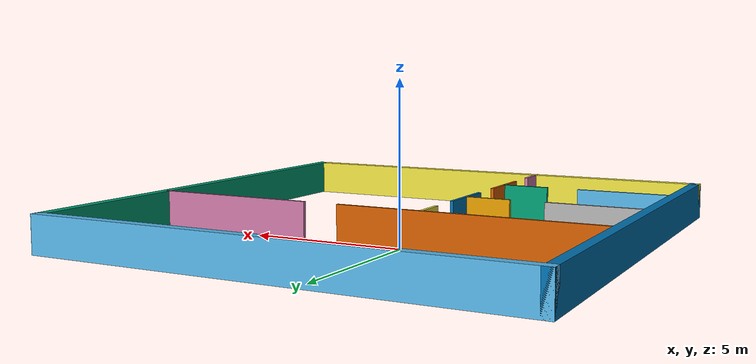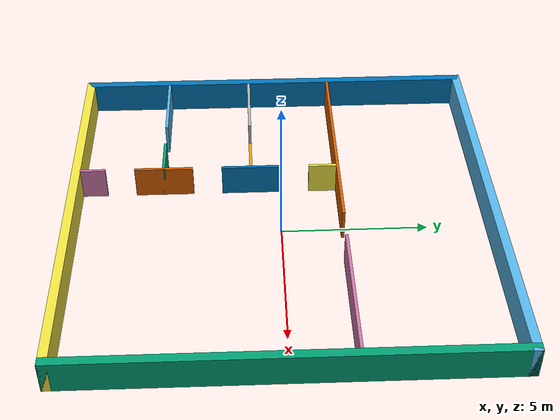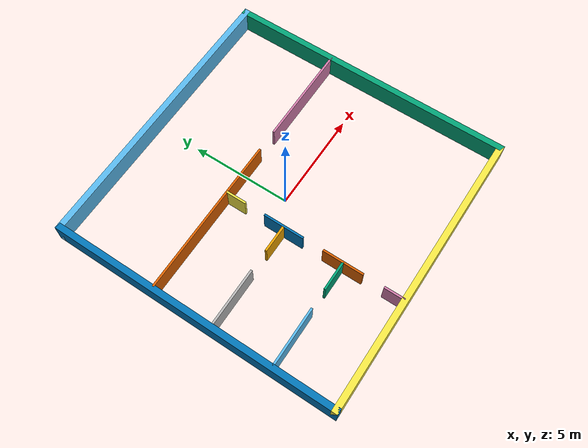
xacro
<?xml version="1.0"?>

<robot name="walls">
  <!-- import all gazebo-customization elements -->
  <xacro:include filename="$(find gazebo_worlds)/common/worlds/world.gazebo" />

	<!-- dummy_link -->
	<link name="dummy_link">
		<inertial>
			<origin xyz="0 0 0" />
			<mass value="5.0" />
			<inertia ixx="0.0" ixy="0.0" ixz="0.0" iyy="0.0" iyz="0.0" izz="0.0" />
		</inertial>
		<visual>
			<origin xyz="0 0 0" />
			<geometry>
				<box size="0.00 0.00 0.00" />
			</geometry>
		</visual>
		<collision>
			<origin xyz="0 0 0" />
			<geometry>
				<box size="0.00 0.00 0.00" />
			</geometry>
		</collision>
	</link>

<!-- walls -->

	<!-- north_wall -->
	<link name="north_wall">
		<inertial>
			<origin xyz="0 0 0" />
			<mass value="5.0" />
			<inertia ixx="0.0" ixy="0.0" ixz="0.0" iyy="0.0" iyz="0.0" izz="0.0" />
		</inertial>
		<visual>
			<origin xyz="0 0 0" />
			<geometry>
				<box size="14.3 0.3 1.1" />
			</geometry>
		</visual>
		<collision>
			<origin xyz="0 0 0" />
			<geometry>
				<box size="14.32 0.32 1.120" />
			</geometry>
		</collision>
	</link>

	<joint name="joint_north_wall" type="fixed">
		<origin xyz="0 7 1" rpy="0 0 0" />
		<parent link="dummy_link" />
		<child link="north_wall" />
	</joint>

	<!-- east_wall -->
	<link name="east_wall">
		<inertial>
			<origin xyz="0 0 0" />
			<mass value="5.0" />
			<inertia ixx="0.0" ixy="0.0" ixz="0.0" iyy="0.0" iyz="0.0" izz="0.0" />
		</inertial>
		<visual>
			<origin xyz="0 0 0" />
			<geometry>
				<box size="0.3 14.3 1.1" />
			</geometry>
		</visual>
		<collision>
			<origin xyz="0 0 0" />
			<geometry>
				<box size="0.32 14.32 1.120" />
			</geometry>
		</collision>
	</link>

	<joint name="joint_east_wall" type="fixed">
		<origin xyz="7 0 1" rpy="0 0 0" />
		<parent link="dummy_link" />
		<child link="east_wall" />
	</joint>

	<!-- south_wall -->
	<link name="south_wall">
		<inertial>
			<origin xyz="0 0 0" />
			<mass value="5.0" />
			<inertia ixx="0.0" ixy="0.0" ixz="0.0" iyy="0.0" iyz="0.0" izz="0.0" />
		</inertial>
		<visual>
			<origin xyz="0 0 0" />
			<geometry>
				<box size="14.3 0.3 1.1" />
			</geometry>
		</visual>
		<collision>
			<origin xyz="0 0 0" />
			<geometry>
				<box size="14.32 0.32 1.120" />
			</geometry>
		</collision>
	</link>

	<joint name="joint_south_wall" type="fixed">
		<origin xyz="0 -7 1" rpy="0 0 0" />
		<parent link="dummy_link" />
		<child link="south_wall" />
	</joint>

	<!-- west_wall -->
	<link name="west_wall">
		<inertial>
			<origin xyz="0 0 0" />
			<mass value="5.0" />
			<inertia ixx="0.0" ixy="0.0" ixz="0.0" iyy="0.0" iyz="0.0" izz="0.0" />
		</inertial>
		<visual>
			<origin xyz="0 0 0" />
			<geometry>
				<box size="0.3 14.3 1.1" />
			</geometry>
		</visual>
		<collision>
			<origin xyz="0 0 0" />
			<geometry>
				<box size="0.32 14.32 1.12" />
			</geometry>
		</collision>
	</link>

	<joint name="joint_west_wall" type="fixed">
		<origin xyz="-7 0 1" rpy="0 0 0" />
		<parent link="dummy_link" />
		<child link="west_wall" />
	</joint>

        <!-- center_wall_one -->
	<link name="center_wall_one">
		<inertial>
			<origin xyz="0 0 0" />
			<mass value="5.0" />
			<inertia ixx="0.0" ixy="0.0" ixz="0.0" iyy="0.0" iyz="0.0" izz="0.0" />
		</inertial>
		<visual>
			<origin xyz="0 0 0" />
			<geometry>
				<box size="7.85 0.1 1.1" />
			</geometry>
		</visual>
		<collision>
			<origin xyz="0 0 0" />
			<geometry>
				<box size="7.85 0.1 1.1" />
			</geometry>
		</collision>
	</link>

	<joint name="joint_center_wall_one" type="fixed">
		<origin xyz="-3 2 1" rpy="0 0 0" />
		<parent link="dummy_link" />
		<child link="center_wall_one" />
	</joint>

        <!-- center_wall_two -->
	<link name="center_wall_two">
		<inertial>
			<origin xyz="0 0 0" />
			<mass value="5.0" />
			<inertia ixx="0.0" ixy="0.0" ixz="0.0" iyy="0.0" iyz="0.0" izz="0.0" />
		</inertial>
		<visual>
			<origin xyz="0 0 0" />
			<geometry>
				<box size="5 0.1 1.1" />
			</geometry>
		</visual>
		<collision>
			<origin xyz="0 0 0" />
			<geometry>
				<box size="5.0 0.1 1.1" />
			</geometry>
		</collision>
	</link>

	<joint name="joint_center_wall_two" type="fixed">
		<origin xyz="4.5 2 1" rpy="0 0 0" />
		<parent link="dummy_link" />
		<child link="center_wall_two" />
	</joint>

        <!-- center_wall_three -->
	<link name="center_wall_three">
		<inertial>
			<origin xyz="0 0 0" />
			<mass value="5.0" />
			<inertia ixx="0.0" ixy="0.0" ixz="0.0" iyy="0.0" iyz="0.0" izz="0.0" />
		</inertial>
		<visual>
			<origin xyz="0 0 0" />
			<geometry>
				<box size="2.85 0.1 1.1" />
			</geometry>
		</visual>
		<collision>
			<origin xyz="0 0 0" />
			<geometry>
				<box size="2.85 0.1 1.1" />
			</geometry>
		</collision>
	</link>

	<joint name="joint_center_wall_three" type="fixed">
		<origin xyz="-5.5 -1 1" rpy="0 0 0" />
		<parent link="dummy_link" />
		<child link="center_wall_three" />
	</joint>

        <!-- center_wall_four -->
	<link name="center_wall_four">
		<inertial>
			<origin xyz="0 0 0" />
			<mass value="5.0" />
			<inertia ixx="0.0" ixy="0.0" ixz="0.0" iyy="0.0" iyz="0.0" izz="0.0" />
		</inertial>
		<visual>
			<origin xyz="0 0 0" />
			<geometry>
				<box size="1.35 0.1 1.1" />
			</geometry>
		</visual>
		<collision>
			<origin xyz="0 0 0" />
			<geometry>
				<box size="1.35 0.1 1.1" />
			</geometry>
		</collision>
	</link>

	<joint name="joint_center_wall_four" type="fixed">
		<origin xyz="-2.35 -1 1" rpy="0 0 0" />
		<parent link="dummy_link" />
		<child link="center_wall_four" />
	</joint>

        <!-- center_wall_five -->
	<link name="center_wall_five">
		<inertial>
			<origin xyz="0 0 0" />
			<mass value="5.0" />
			<inertia ixx="0.0" ixy="0.0" ixz="0.0" iyy="0.0" iyz="0.0" izz="0.0" />
		</inertial>
		<visual>
			<origin xyz="0 0 0" />
			<geometry>
				<box size="2.85 0.1 1.1" />
			</geometry>
		</visual>
		<collision>
			<origin xyz="0 0 0" />
			<geometry>
				<box size="2.85 0.1 1.1" />
			</geometry>
		</collision>
	</link>

	<joint name="joint_center_wall_five" type="fixed">
		<origin xyz="-5.5 -4 1" rpy="0 0 0" />
		<parent link="dummy_link" />
		<child link="center_wall_five" />
	</joint>

        <!-- center_wall_six -->
	<link name="center_wall_six">
		<inertial>
			<origin xyz="0 0 0" />
			<mass value="5.0" />
			<inertia ixx="0.0" ixy="0.0" ixz="0.0" iyy="0.0" iyz="0.0" izz="0.0" />
		</inertial>
		<visual>
			<origin xyz="0 0 0" />
			<geometry>
				<box size="1.50 0.1 1.1" />
			</geometry>
		</visual>
		<collision>
			<origin xyz="0 0 0" />
			<geometry>
				<box size="1.50 0.1 1.1" />
			</geometry>
		</collision>
	</link>

	<joint name="joint_center_wall_six" type="fixed">
		<origin xyz="-2.35 -4 1" rpy="0 0 0" />
		<parent link="dummy_link" />
		<child link="center_wall_six" />
	</joint>

        <!-- center_wall_seven -->
	<link name="center_wall_seven">
		<inertial>
			<origin xyz="0 0 0" />
			<mass value="5.0" />
			<inertia ixx="0.0" ixy="0.0" ixz="0.0" iyy="0.0" iyz="0.0" izz="0.0" />
		</inertial>
		<visual>
			<origin xyz="0 0 0" />
			<geometry>
				<box size="0.1 1.0 1.1" />
			</geometry>
		</visual>
		<collision>
			<origin xyz="0 0 0" />
			<geometry>
				<box size="0.1 1.0 1.1" />
			</geometry>
		</collision>
	</link>

	<joint name="joint_center_wall_seven" type="fixed">
		<origin xyz="-1.65 1.5 1" rpy="0 0 0" />
		<parent link="dummy_link" />
		<child link="center_wall_seven" />
	</joint>

        <!-- center_wall_eight -->
	<link name="center_wall_eight">
		<inertial>
			<origin xyz="0 0 0" />
			<mass value="5.0" />
			<inertia ixx="0.0" ixy="0.0" ixz="0.0" iyy="0.0" iyz="0.0" izz="0.0" />
		</inertial>
		<visual>
			<origin xyz="0 0 0" />
			<geometry>
				<box size="0.1 2.0 1.1" />
			</geometry>
		</visual>
		<collision>
			<origin xyz="0 0 0" />
			<geometry>
				<box size="0.1 2.0 1.1" />
			</geometry>
		</collision>
	</link>

	<joint name="joint_center_wall_eight" type="fixed">
		<origin xyz="-1.65 -1.0 1" rpy="0 0 0" />
		<parent link="dummy_link" />
		<child link="center_wall_eight" />
	</joint>

        <!-- center_wall_nine -->
	<link name="center_wall_nine">
		<inertial>
			<origin xyz="0 0 0" />
			<mass value="5.0" />
			<inertia ixx="0.0" ixy="0.0" ixz="0.0" iyy="0.0" iyz="0.0" izz="0.0" />
		</inertial>
		<visual>
			<origin xyz="0 0 0" />
			<geometry>
				<box size="0.1 2.0 1.1" />
			</geometry>
		</visual>
		<collision>
			<origin xyz="0 0 0" />
			<geometry>
				<box size="0.1 2.0 1.1" />
			</geometry>
		</collision>
	</link>

	<joint name="joint_center_wall_nine" type="fixed">
		<origin xyz="-1.65 -4.0 1" rpy="0 0 0" />
		<parent link="dummy_link" />
		<child link="center_wall_nine" />
	</joint>

        <!-- center_wall_ten -->
	<link name="center_wall_ten">
		<inertial>
			<origin xyz="0 0 0" />
			<mass value="5.0" />
			<inertia ixx="0.0" ixy="0.0" ixz="0.0" iyy="0.0" iyz="0.0" izz="0.0" />
		</inertial>
		<visual>
			<origin xyz="0 0 0" />
			<geometry>
				<box size="0.1 1.0 1.1" />
			</geometry>
		</visual>
		<collision>
			<origin xyz="0 0 0" />
			<geometry>
				<box size="0.1 1.0 1.1" />
			</geometry>
		</collision>
	</link>

	<joint name="joint_center_wall_ten" type="fixed">
		<origin xyz="-1.65 -6.5 1" rpy="0 0 0" />
		<parent link="dummy_link" />
		<child link="center_wall_ten" />
	</joint>

 <gazebo reference="north_wall">
	<material>IPA/Wall2</material>
	<selfCollide>false</selfCollide>
 </gazebo>

 <gazebo reference="east_wall">
	<material>IPA/Wall2</material>
	<selfCollide>false</selfCollide>
 </gazebo>
 <gazebo reference="west_wall">
	<material>IPA/Wall2</material>
	<selfCollide>false</selfCollide>
 </gazebo>
 <gazebo reference="south_wall">
	<material>IPA/Wall2</material>
	<selfCollide>false</selfCollide>
 </gazebo>

 <gazebo reference="center_wall_one">
	<material>IPA/Wall2</material>
	<selfCollide>false</selfCollide>
 </gazebo>
 <gazebo reference="center_wall_two">
	<material>IPA/Wall2</material>
	<selfCollide>false</selfCollide>
 </gazebo>
 <gazebo reference="center_wall_three">
	<material>IPA/Wall2</material>
	<selfCollide>false</selfCollide>
 </gazebo>
 <gazebo reference="center_wall_four">
	<material>IPA/Wall2</material>
	<selfCollide>false</selfCollide>
 </gazebo>
 <gazebo reference="center_wall_five">
	<material>IPA/Wall2</material>
	<selfCollide>false</selfCollide>
 </gazebo>
 <gazebo reference="center_wall_six">
	<material>IPA/Wall2</material>
	<selfCollide>false</selfCollide>
 </gazebo>
 <gazebo reference="center_wall_seven">
	<material>IPA/Wall2</material>
	<selfCollide>false</selfCollide>
 </gazebo>

 <gazebo reference="center_wall_eight">
	<material>IPA/Wall2</material>
	<selfCollide>false</selfCollide>
 </gazebo>

 <gazebo reference="center_wall_nine">
	<material>IPA/Wall2</material>
	<selfCollide>false</selfCollide>
 </gazebo>
 <gazebo reference="center_wall_ten">
	<material>IPA/Wall2</material>
	<selfCollide>false</selfCollide>
 </gazebo>

</robot>
